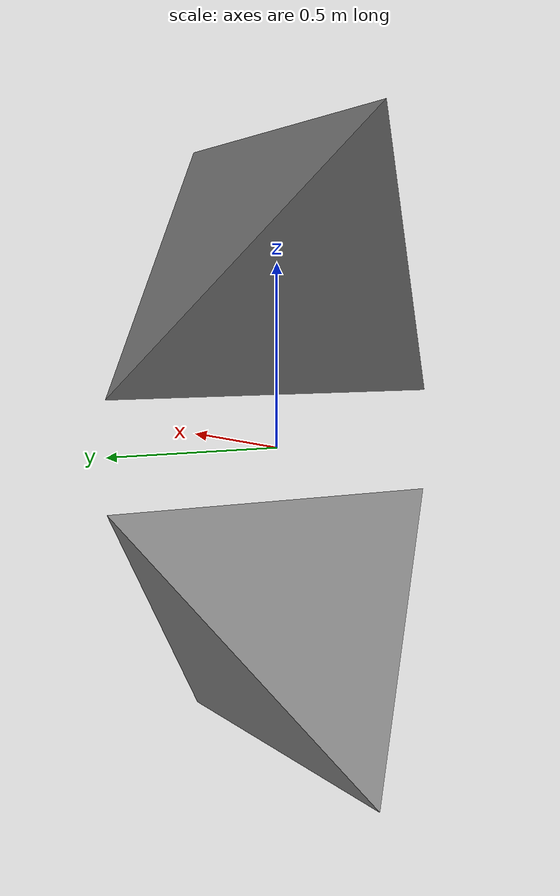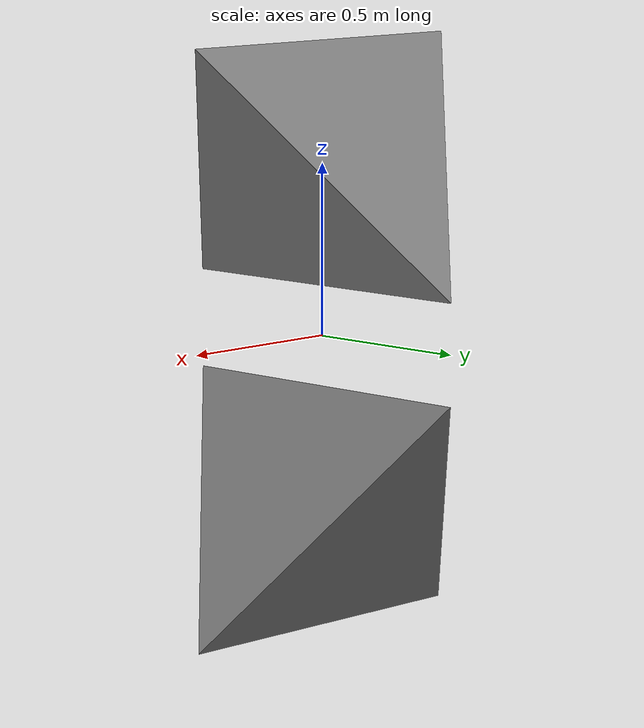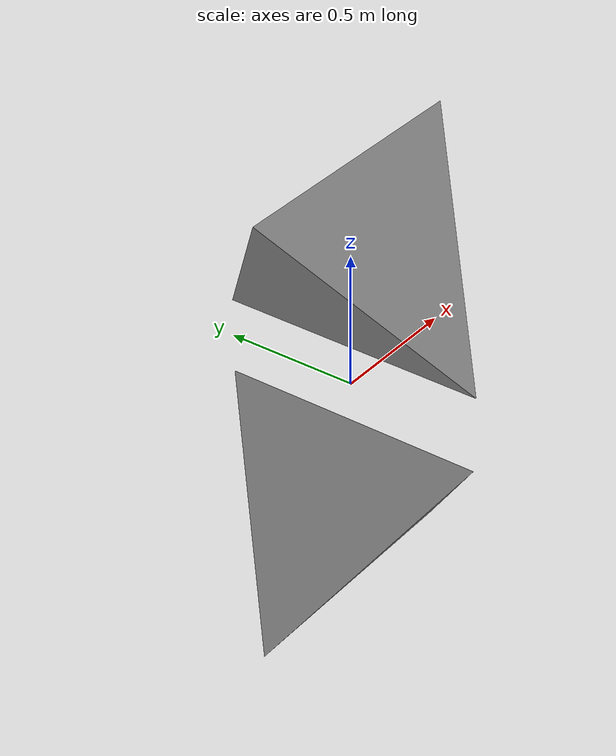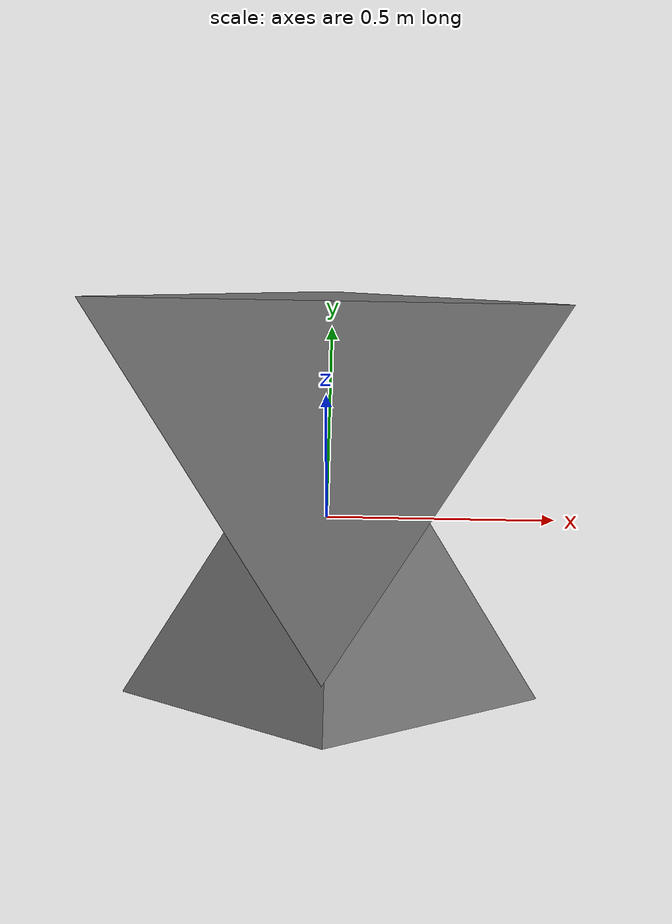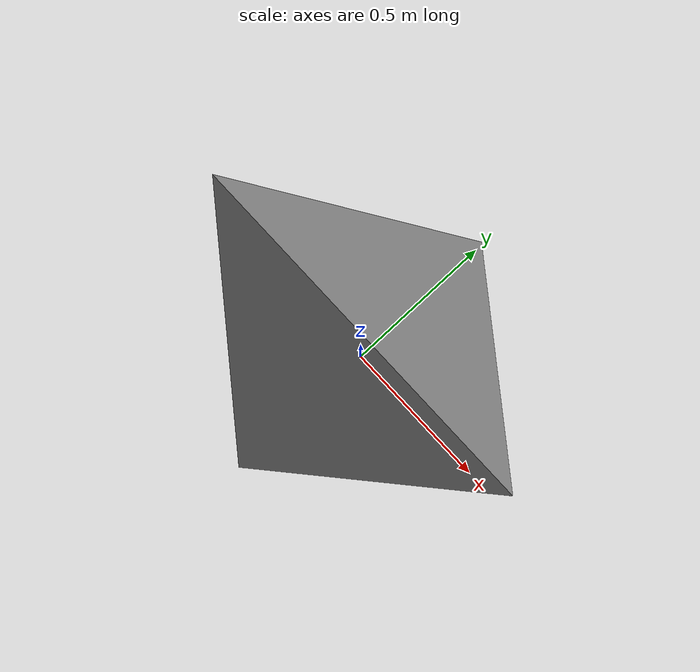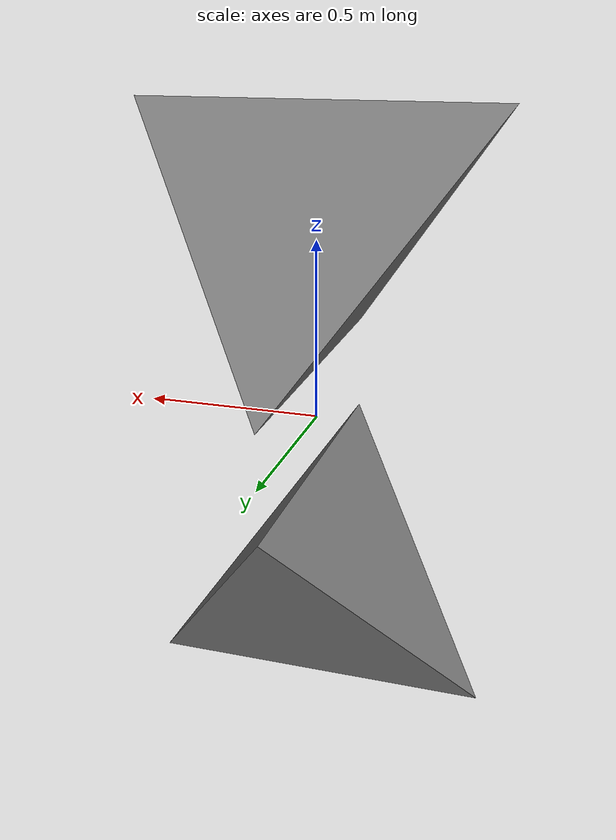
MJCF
<mujoco>
    <asset>
        <mesh file="tet-perp.obj" name="tet-perp"/>
    </asset>
    <worldbody>
        <body pos="-0 0 0.5" quat="-0.5 -0.5 0.5 0.5">
            <geom mesh="tet-perp" type="mesh"/>
        </body>
        <body pos="-0 0 -0.5" quat="0 0 0.707107 0.707107">
            <geom mesh="tet-perp" type="mesh"/>
            <inertial mass="0"/>
        </body>
    </worldbody>
</mujoco>
